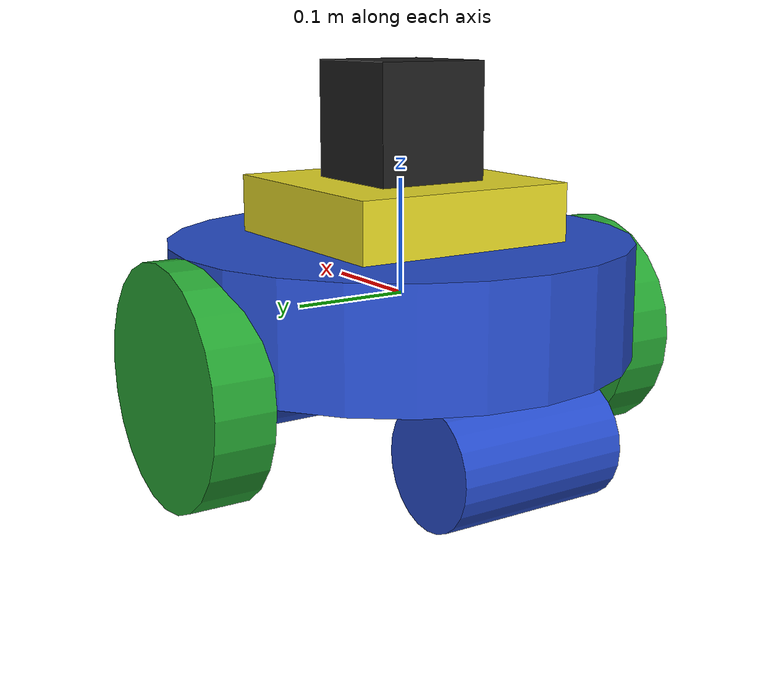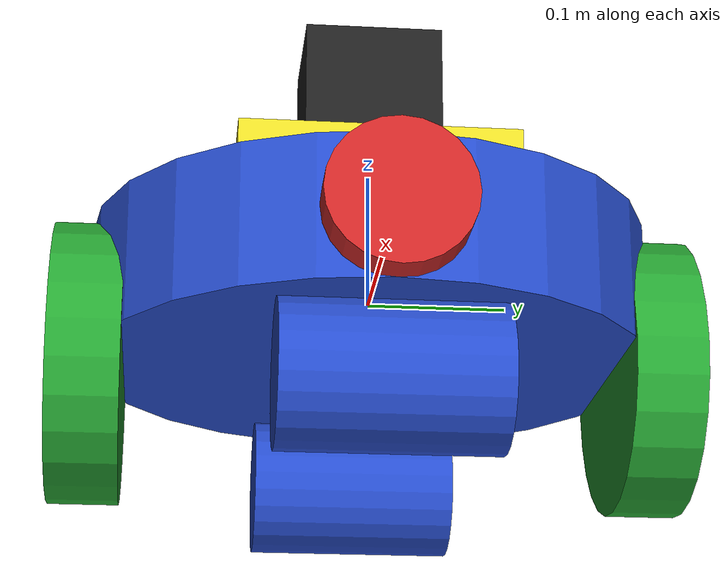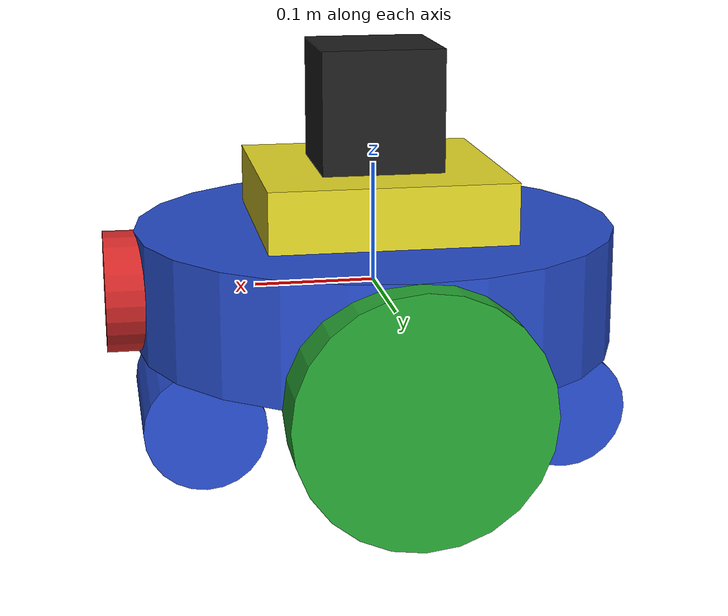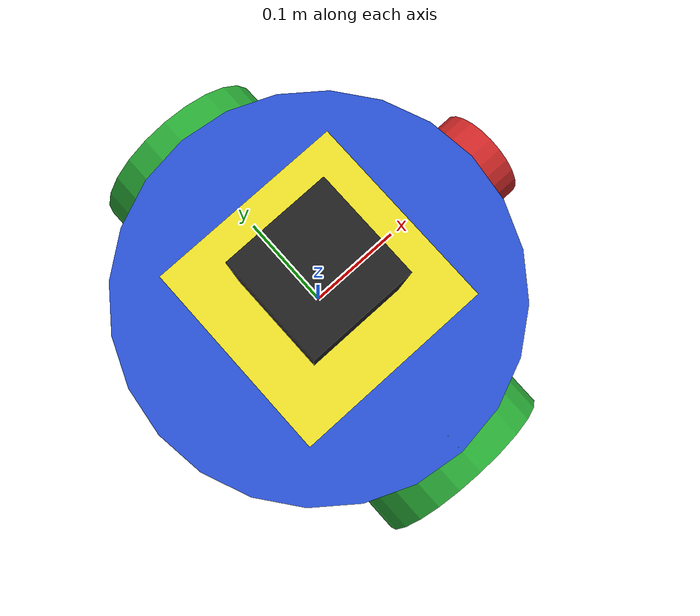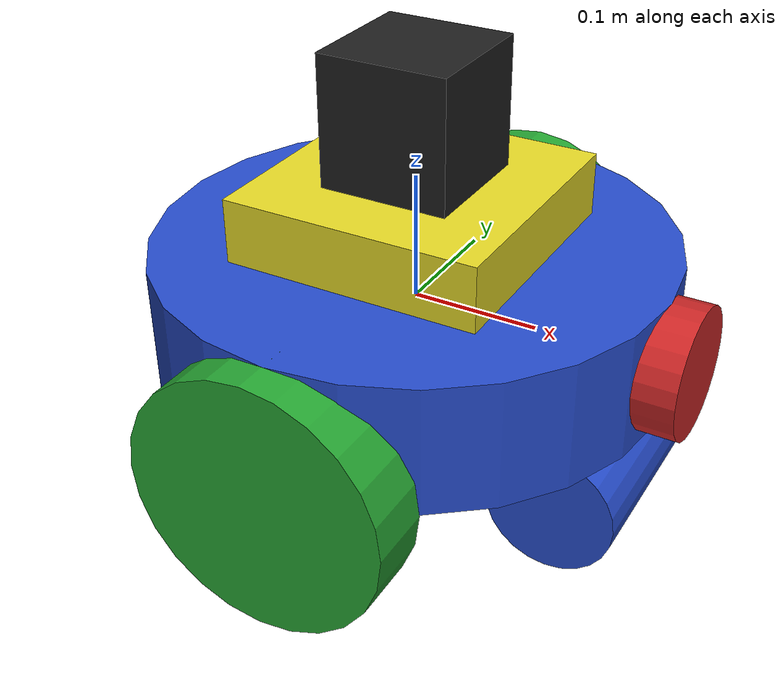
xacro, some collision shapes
<?xml version='1.0'?>

<robot name="my_robot" xmlns:xacro="http://www.ros.org/wiki/xacro">

<xacro:include filename="$(find my_robot)/urdf/my_robot.gazebo" />
  <link name="robot_footprint"></link>

  <joint name="robot_footprint_joint" type="fixed">
    <origin xyz="0 0 0" rpy="0 0 0" />
    <parent link="robot_footprint"/>
    <child link="chassis" />
  </joint>

  <link name='chassis'>
    <pose>0 0 0.1 0 0 0</pose>

    <inertial>
      <mass value="15.0"/>
      <origin xyz="0 0 0" rpy=" 0 0 0"/>
      <inertia
          ixx="0.1" ixy="0" ixz="0"
          iyy="0.1" iyz="0"
          izz="0.1"
      />
    </inertial>

    <collision name='collision'>
      <origin xyz="0 0 0" rpy=" 0 0 0 "/>
      <geometry>
	 <cylinder length=".1" radius="0.2"/>
      </geometry>
    </collision>

    <visual name='chassis_visual'>
      <origin xyz="0 0 0" rpy=" 0 0 0 "/>
      <geometry>
	 <cylinder length=".1" radius="0.2"/>
      </geometry>
    </visual>

    <collision name='back_caster_collision'>
      <origin xyz="-0.15 0 -0.1" rpy="1.5707 0 0"/>
      <geometry>
	 <cylinder length=".15" radius="0.0499"/>
      </geometry>
    </collision>

    <visual name='back_caster_visual'>
      <origin xyz="-0.15 0 -0.1" rpy="1.5707 0 0 "/>
      <geometry>
	 <cylinder length=".15" radius="0.05"/>
      </geometry>
    </visual>

    <collision name='front_caster_collision'>
      <origin xyz="0.15 0 -0.1" rpy="1.5707 0 0 "/>
      <geometry>
	 <cylinder length=".15" radius="0.0499"/>
      </geometry>
    </collision>

    <visual name='front_caster_visual'>
      <origin xyz="0.15 0 -0.1" rpy="1.5707 0 0 "/>
      <geometry>
	 <cylinder length=".15" radius="0.05"/>
      </geometry>
    </visual>

  </link>

 <link name='right_wheel'>

    <inertial>
      <mass value="5.0"/>
      <origin xyz="0.0 0 0" rpy=" 0 0 0"/>
      <inertia
          ixx="0.1" ixy="0" ixz="0"
          iyy="0.1" iyz="0"
          izz="0.1"
      />
    </inertial>

    <collision name='right_wheel_collision'>
      <origin xyz="0 0 0" rpy=" 0 1.5707 1.5707"/>
      <geometry>
	 <cylinder length="0.05" radius="0.1"/>
      </geometry>
    </collision>

    <visual name='right_wheel_visual'>
      <origin xyz="0 0 0" rpy=" 0 1.5707 1.5707"/>
      <geometry>
	 <cylinder length="0.05" radius="0.1"/>
      </geometry>
    </visual>

  </link>

 <link name='left_wheel'>

    <inertial>
      <mass value="5.0"/>
      <origin xyz="0.0 0 0" rpy=" 0 0 0"/>
      <inertia
          ixx="0.1" ixy="0" ixz="0"
          iyy="0.1" iyz="0"
          izz="0.1"
      />
    </inertial>

    <collision name='left_wheel_collision'>
      <origin xyz="0 0 0" rpy=" 0 1.5707 1.5707"/>
      <geometry>
	 <cylinder length="0.05" radius="0.1"/>
      </geometry>
    </collision>

    <visual name='left_wheel_visual'>
      <origin xyz="0 0 0" rpy=" 0 1.5707 1.5707"/>
      <geometry>
	 <cylinder length="0.05" radius="0.1"/>
      </geometry>
    </visual>

  </link>

 <joint type="continuous" name="left_wheel_hinge">
    <origin xyz="0 0.2 -.05" rpy="0 0 0"/>
    <child link="left_wheel"/>
    <parent link="chassis"/>
    <axis xyz="0 1 0" rpy="0 0 0"/>
    <limit effort="10000" velocity="1000"/>
    <dynamics damping="1.0" friction="1.0"/>
    <commandTopic>cmd_vel</commandTopic>
  </joint>

  <joint type="continuous" name="right_wheel_hinge">
    <origin xyz="0 -0.2 -.05" rpy="0 0 0"/>
    <child link="right_wheel"/>
    <parent link="chassis"/>
    <axis xyz="0 1 0" rpy="0 0 0"/>
    <limit effort="10000" velocity="1000"/>
    <dynamics damping="1.0" friction="1.0"/>
    <commandTopic>cmd_vel</commandTopic>
  </joint>

 <link name='camera'>
     <origin xyz="0.0 0 0" rpy=" 0 0 0"/>

    <inertial>
      <mass value=".1"/>
      <origin xyz="0.05 0.05 0.05" rpy=" 0 0 0"/>
      <inertia
          ixx="1e-6" ixy="0" ixz="0"
          iyy="1e-6" iyz="0"
          izz="1e-6"
      />
    </inertial>

     <collision name='camera_collision'>
      <origin xyz="0 0 0" rpy=" 0 1.5707 0"/>
      <geometry>
	 <cylinder length="0.05" radius="0.05"/>
      </geometry>
    </collision>

    <visual name='camera_visual'>
      <origin xyz="0 0 0" rpy=" 0 1.5707 0"/>
      <geometry>
	 <cylinder length="0.05" radius="0.05"/>
      </geometry>
    </visual>
  <imageTopicName>rgb/image_raw</imageTopicName>
  </link>

  <joint type="fixed" name="camera_joint">
    <origin xyz="0.2 0 0" rpy="0 0 0"/>
    <child link="camera"/>
    <parent link="chassis"/>
    <axis xyz="0 1 0" rpy="0 0 0"/>
    <limit effort="10000" velocity="1000"/>
    <dynamics damping="1.0" friction="1.0"/>
  </joint>

 <link name='hokuyo'>
     <origin xyz="0.0 0 0" rpy=" 0 0 0"/>

    <inertial>
      <mass value="1e-5"/>
      <origin xyz="0 0 0" rpy=" 0 0 0"/>
      <inertia
          ixx="1e-6" ixy="0" ixz="0"
          iyy="1e-6" iyz="0"
          izz="1e-6"
      />
    </inertial>

     <collision name='hokuyo_collision'>
      <origin xyz="0 0 0" rpy=" 0 0 0"/>
      <geometry>
        <box size=".1 .1 .1"/>
      </geometry>
    </collision>

    <visual name='hokuyo_visual'>
      <origin xyz="0 0 0" rpy=" 0 0 0"/>
      <geometry>
	 <mesh filename = "package://my_robot/meshes/hokuyo.dae"/>
      </geometry>
    </visual>
   <topicName>/scan</topicName>

  </link>

  <joint type="fixed" name="hokuyo_joint">
    <origin xyz="0 0 0.1" rpy="0 0 0"/>
    <child link="hokuyo"/>
    <parent link="cabin"/>
    <axis xyz="0 1 0" rpy="0 0 0"/>
    <limit effort="10000" velocity="1000"/>
    <dynamics damping="1.0" friction="1.0"/>
  </joint>

<link name='cabin'>

    <inertial>
      <mass value=".5"/>
      <origin xyz="0.0 0 0" rpy=" 0 0 0"/>
      <inertia
          ixx="0.05" ixy="0" ixz="0"
          iyy="0.05" iyz="0"
          izz="0.05"
      />
    </inertial>

    <collision name='cabin_collision'>
      <origin xyz="0 0 0" rpy=" 0 0 0"/>
      <geometry>
        <box size=".2 .2 .1"/>
      </geometry>
    </collision>y

    <visual name='cabin_visual'>
      <origin xyz="0 0 0" rpy=" 0 0 0 "/>
      <geometry>
        <box size=".2 .2 .1"/>
      </geometry>
    </visual>

  </link>
  <joint name="camera_optical_joint" type="fixed">
    <origin xyz="0 0 0" rpy="-1.5707 0 -1.5707"/>
    <parent link="camera"/>
    <child link="camera_optical"/>
  </joint>

  <link name="camera_optical">
  </link>

  <joint name="cabin_joint" type="fixed">
    <origin xyz=" 0 0 .05" rpy="0 0 0" />
    <parent link="chassis"/>
    <child link="cabin" />
  </joint>
<gazebo reference="left_wheel">
    <material>Gazebo/Green</material>
</gazebo>

<gazebo reference="right_wheel">
    <material>Gazebo/Green</material>
</gazebo>

<gazebo reference="chassis">
    <material>Gazebo/Blue</material>
</gazebo>
<gazebo reference="cabin">
    <material>Gazebo/Yellow</material>
</gazebo>

<gazebo reference="camera">
    <material>Gazebo/Red</material>
</gazebo>

<gazebo reference="hokuyo">
    <material>Gazebo/Black</material>
</gazebo>
</robot>
